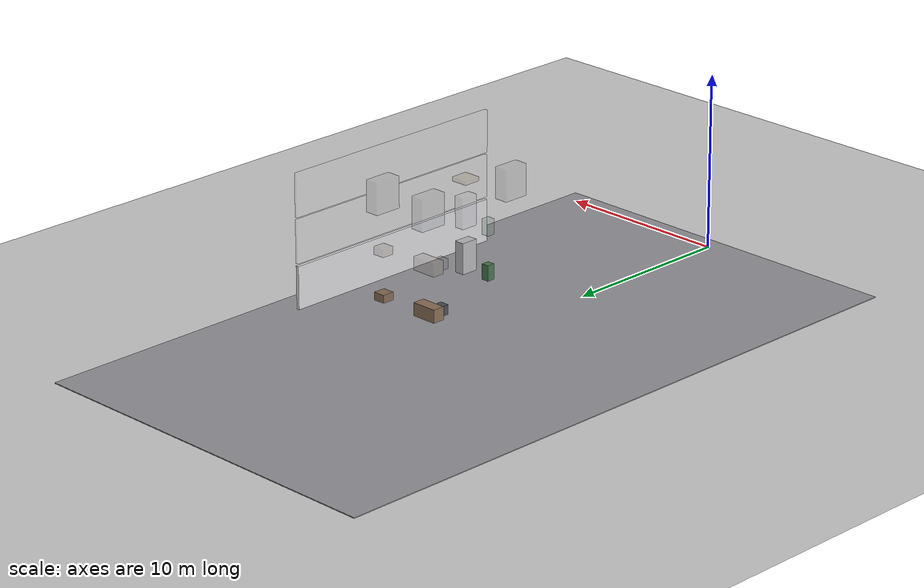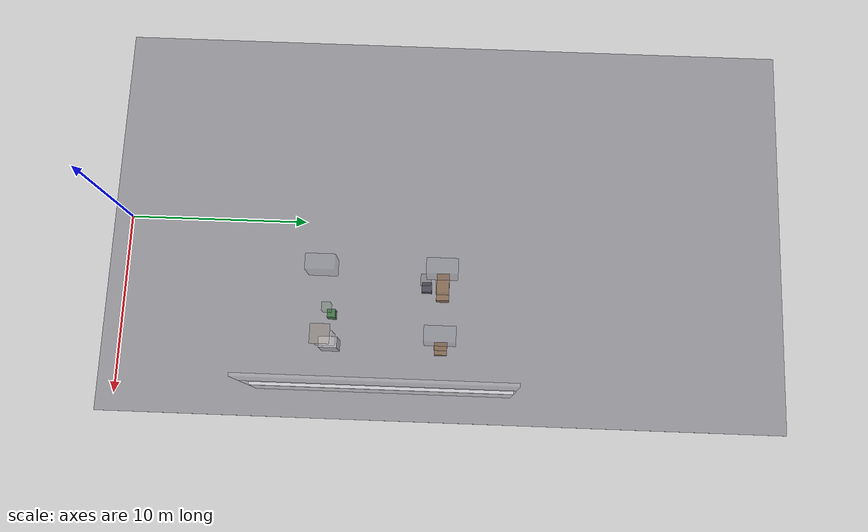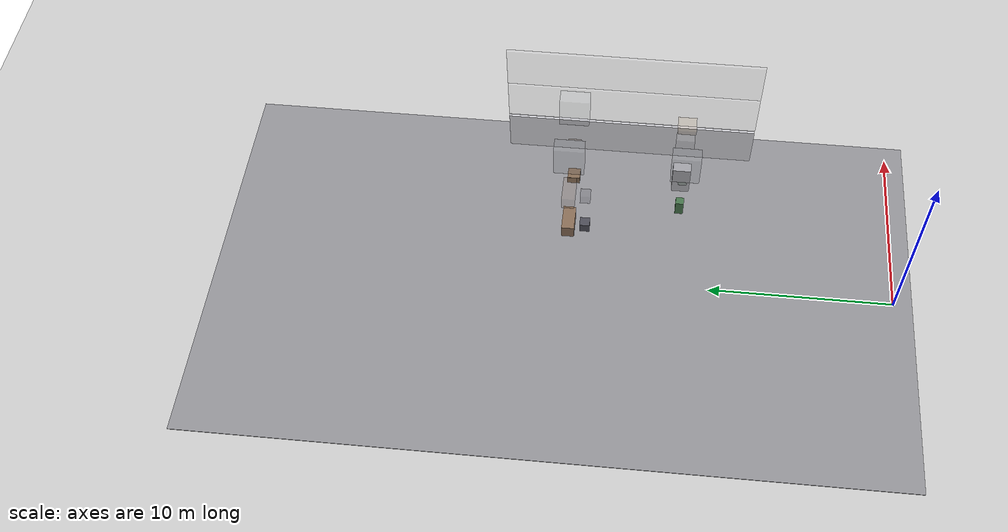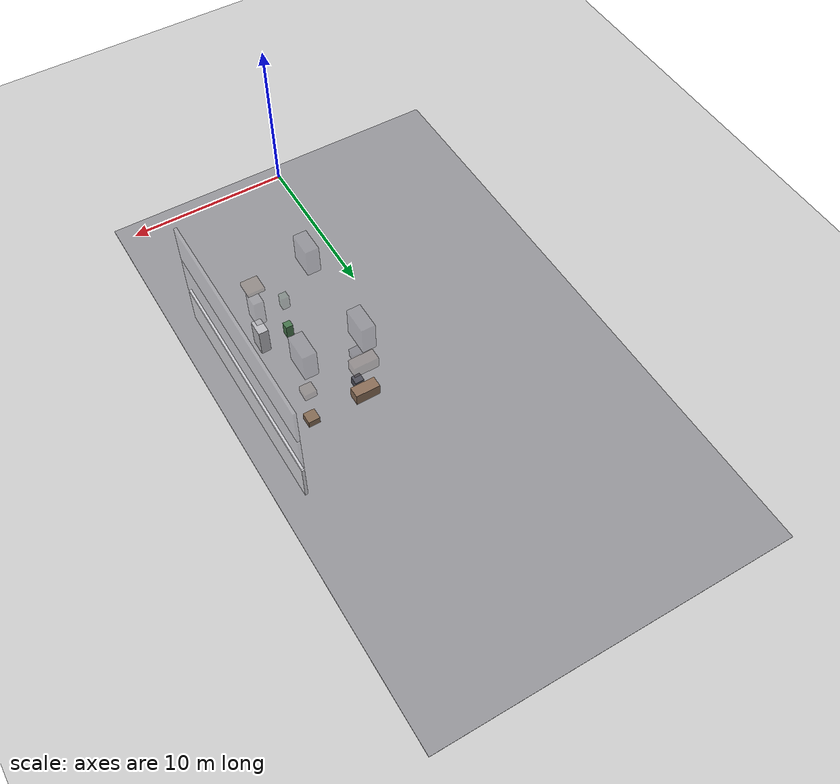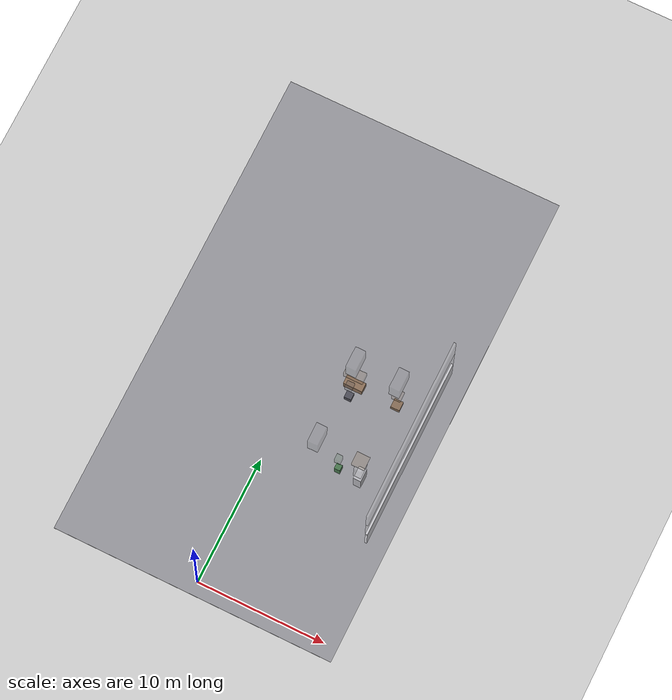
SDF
<sdf version="1.7">
 <world name="generated_world">
  <include><uri>model://sun</uri></include>
  <include><uri>model://ground_plane</uri></include>
  <model name="generated_building">
   <static>true</static>
   <link name="foundation">
    <pose>0.0000 18.0000 -0.1500 0.0000 0.0000 0.0000</pose>
    <collision name="foundation_collision">
     <geometry><box><size>22.0000 38.0000 0.3000</size></box></geometry>
    </collision>
    <visual name="foundation_visual">
     <geometry><box><size>22.0000 38.0000 0.3000</size></box></geometry>
     <material><ambient>0.58 0.58 0.60 1</ambient><diffuse>0.58 0.58 0.60 1</diffuse></material>
    </visual>
    <gravity>false</gravity>
   </link>
   <link name="floor_0_room_1_east_wall">
    <pose>9.4100 14.8650 1.2250 0.0000 0.0000 0.0000</pose>
    <collision name="floor_0_room_1_east_wall_collision">
     <geometry><box><size>0.1800 14.0300 2.4500</size></box></geometry>
    </collision>
    <visual name="floor_0_room_1_east_wall_visual">
     <geometry><box><size>0.1800 14.0300 2.4500</size></box></geometry>
     <material><ambient>0.86 0.86 0.88 1</ambient><diffuse>0.86 0.86 0.88 1</diffuse></material>
    </visual>
    <gravity>false</gravity>
   </link>
   <link name="floor_0_room_1_desk">
    <pose>3.6000 17.9225 0.4500 0.0000 0.0000 0.0000</pose>
    <collision name="floor_0_room_1_desk_collision">
     <geometry><box><size>1.5000 0.7000 0.7500</size></box></geometry>
    </collision>
    <visual name="floor_0_room_1_desk_visual">
     <geometry><box><size>1.5000 0.7000 0.7500</size></box></geometry>
     <material><ambient>0.54 0.43 0.34 1</ambient><diffuse>0.54 0.43 0.34 1</diffuse></material>
    </visual>
    <gravity>false</gravity>
   </link>
   <link name="floor_0_room_1_chair">
    <pose>3.6000 17.0225 0.2800 0.0000 0.0000 0.0000</pose>
    <collision name="floor_0_room_1_chair_collision">
     <geometry><box><size>0.5500 0.5500 0.5500</size></box></geometry>
    </collision>
    <visual name="floor_0_room_1_chair_visual">
     <geometry><box><size>0.5500 0.5500 0.5500</size></box></geometry>
     <material><ambient>0.30 0.30 0.34 1</ambient><diffuse>0.30 0.30 0.34 1</diffuse></material>
    </visual>
    <gravity>false</gravity>
   </link>
   <link name="floor_0_room_1_cabinet">
    <pose>7.0000 11.8075 0.9000 0.0000 0.0000 0.0000</pose>
    <collision name="floor_0_room_1_cabinet_collision">
     <geometry><box><size>0.6000 1.0000 1.8000</size></box></geometry>
    </collision>
    <visual name="floor_0_room_1_cabinet_visual">
     <geometry><box><size>0.6000 1.0000 1.8000</size></box></geometry>
     <material><ambient>0.72 0.72 0.74 1</ambient><diffuse>0.72 0.72 0.74 1</diffuse></material>
    </visual>
    <gravity>false</gravity>
   </link>
   <link name="floor_0_room_1_side_table">
    <pose>7.0000 17.9225 0.3200 0.0000 0.0000 0.0000</pose>
    <collision name="floor_0_room_1_side_table_collision">
     <geometry><box><size>0.7000 0.7000 0.4500</size></box></geometry>
    </collision>
    <visual name="floor_0_room_1_side_table_visual">
     <geometry><box><size>0.7000 0.7000 0.4500</size></box></geometry>
     <material><ambient>0.52 0.42 0.33 1</ambient><diffuse>0.52 0.42 0.33 1</diffuse></material>
    </visual>
    <gravity>false</gravity>
   </link>
   <link name="floor_0_room_1_planter">
    <pose>5.3000 11.8075 0.4500 0.0000 0.0000 0.0000</pose>
    <collision name="floor_0_room_1_planter_collision">
     <geometry><box><size>0.4500 0.4500 0.9000</size></box></geometry>
    </collision>
    <visual name="floor_0_room_1_planter_visual">
     <geometry><box><size>0.4500 0.4500 0.9000</size></box></geometry>
     <material><ambient>0.28 0.46 0.30 1</ambient><diffuse>0.28 0.46 0.30 1</diffuse></material>
    </visual>
    <gravity>false</gravity>
   </link>
   <link name="floor_1_room_1_east_wall">
    <pose>9.4100 14.8650 3.8250 0.0000 0.0000 0.0000</pose>
    <collision name="floor_1_room_1_east_wall_collision">
     <geometry><box><size>0.1800 14.0300 2.4500</size></box></geometry>
    </collision>
    <visual name="floor_1_room_1_east_wall_visual">
     <geometry><box><size>0.1800 14.0300 2.4500</size></box></geometry>
     <material><ambient>0.86 0.86 0.88 1</ambient><diffuse>0.86 0.86 0.88 1</diffuse></material>
     <transparency>0.80</transparency>
    </visual>
    <gravity>false</gravity>
   </link>
   <link name="floor_1_room_1_desk">
    <pose>3.6000 17.9225 3.0500 0.0000 0.0000 0.0000</pose>
    <collision name="floor_1_room_1_desk_collision">
     <geometry><box><size>1.5000 0.7000 0.7500</size></box></geometry>
    </collision>
    <visual name="floor_1_room_1_desk_visual">
     <geometry><box><size>1.5000 0.7000 0.7500</size></box></geometry>
     <material><ambient>0.54 0.43 0.34 1</ambient><diffuse>0.54 0.43 0.34 1</diffuse></material>
     <transparency>0.80</transparency>
    </visual>
    <gravity>false</gravity>
   </link>
   <link name="floor_1_room_1_chair">
    <pose>3.6000 17.0225 2.8800 0.0000 0.0000 0.0000</pose>
    <collision name="floor_1_room_1_chair_collision">
     <geometry><box><size>0.5500 0.5500 0.5500</size></box></geometry>
    </collision>
    <visual name="floor_1_room_1_chair_visual">
     <geometry><box><size>0.5500 0.5500 0.5500</size></box></geometry>
     <material><ambient>0.30 0.30 0.34 1</ambient><diffuse>0.30 0.30 0.34 1</diffuse></material>
     <transparency>0.80</transparency>
    </visual>
    <gravity>false</gravity>
   </link>
   <link name="floor_1_room_1_cabinet">
    <pose>7.0000 11.8075 3.5000 0.0000 0.0000 0.0000</pose>
    <collision name="floor_1_room_1_cabinet_collision">
     <geometry><box><size>0.6000 1.0000 1.8000</size></box></geometry>
    </collision>
    <visual name="floor_1_room_1_cabinet_visual">
     <geometry><box><size>0.6000 1.0000 1.8000</size></box></geometry>
     <material><ambient>0.72 0.72 0.74 1</ambient><diffuse>0.72 0.72 0.74 1</diffuse></material>
     <transparency>0.80</transparency>
    </visual>
    <gravity>false</gravity>
   </link>
   <link name="floor_1_room_1_side_table">
    <pose>7.0000 17.9225 2.9200 0.0000 0.0000 0.0000</pose>
    <collision name="floor_1_room_1_side_table_collision">
     <geometry><box><size>0.7000 0.7000 0.4500</size></box></geometry>
    </collision>
    <visual name="floor_1_room_1_side_table_visual">
     <geometry><box><size>0.7000 0.7000 0.4500</size></box></geometry>
     <material><ambient>0.52 0.42 0.33 1</ambient><diffuse>0.52 0.42 0.33 1</diffuse></material>
     <transparency>0.80</transparency>
    </visual>
    <gravity>false</gravity>
   </link>
   <link name="floor_1_room_1_planter">
    <pose>5.3000 11.8075 3.0500 0.0000 0.0000 0.0000</pose>
    <collision name="floor_1_room_1_planter_collision">
     <geometry><box><size>0.4500 0.4500 0.9000</size></box></geometry>
    </collision>
    <visual name="floor_1_room_1_planter_visual">
     <geometry><box><size>0.4500 0.4500 0.9000</size></box></geometry>
     <material><ambient>0.28 0.46 0.30 1</ambient><diffuse>0.28 0.46 0.30 1</diffuse></material>
     <transparency>0.80</transparency>
    </visual>
    <gravity>false</gravity>
   </link>
   <link name="floor_2_room_1_east_wall">
    <pose>9.4100 14.8650 6.4250 0.0000 0.0000 0.0000</pose>
    <collision name="floor_2_room_1_east_wall_collision">
     <geometry><box><size>0.1800 14.0300 2.4500</size></box></geometry>
    </collision>
    <visual name="floor_2_room_1_east_wall_visual">
     <geometry><box><size>0.1800 14.0300 2.4500</size></box></geometry>
     <material><ambient>0.86 0.86 0.88 1</ambient><diffuse>0.86 0.86 0.88 1</diffuse></material>
     <transparency>0.80</transparency>
    </visual>
    <gravity>false</gravity>
   </link>
   <link name="floor_2_room_1_rack_a">
    <pose>3.6000 17.9225 6.1000 0.0000 0.0000 0.0000</pose>
    <collision name="floor_2_room_1_rack_a_collision">
     <geometry><box><size>0.8000 1.6000 1.8000</size></box></geometry>
    </collision>
    <visual name="floor_2_room_1_rack_a_visual">
     <geometry><box><size>0.8000 1.6000 1.8000</size></box></geometry>
     <material><ambient>0.56 0.57 0.60 1</ambient><diffuse>0.56 0.57 0.60 1</diffuse></material>
     <transparency>0.80</transparency>
    </visual>
    <gravity>false</gravity>
   </link>
   <link name="floor_2_room_1_rack_b">
    <pose>7.0000 17.9225 6.1000 0.0000 0.0000 0.0000</pose>
    <collision name="floor_2_room_1_rack_b_collision">
     <geometry><box><size>0.8000 1.6000 1.8000</size></box></geometry>
    </collision>
    <visual name="floor_2_room_1_rack_b_visual">
     <geometry><box><size>0.8000 1.6000 1.8000</size></box></geometry>
     <material><ambient>0.56 0.57 0.60 1</ambient><diffuse>0.56 0.57 0.60 1</diffuse></material>
     <transparency>0.80</transparency>
    </visual>
    <gravity>false</gravity>
   </link>
   <link name="floor_2_room_1_rack_c">
    <pose>3.6000 11.8075 6.1000 0.0000 0.0000 0.0000</pose>
    <collision name="floor_2_room_1_rack_c_collision">
     <geometry><box><size>0.8000 1.5000 1.8000</size></box></geometry>
    </collision>
    <visual name="floor_2_room_1_rack_c_visual">
     <geometry><box><size>0.8000 1.5000 1.8000</size></box></geometry>
     <material><ambient>0.56 0.57 0.60 1</ambient><diffuse>0.56 0.57 0.60 1</diffuse></material>
     <transparency>0.80</transparency>
    </visual>
    <gravity>false</gravity>
   </link>
   <link name="floor_2_room_1_pallet">
    <pose>7.0000 11.8075 5.3200 0.0000 0.0000 0.0000</pose>
    <collision name="floor_2_room_1_pallet_collision">
     <geometry><box><size>1.0000 1.0000 0.2400</size></box></geometry>
    </collision>
    <visual name="floor_2_room_1_pallet_visual">
     <geometry><box><size>1.0000 1.0000 0.2400</size></box></geometry>
     <material><ambient>0.56 0.44 0.28 1</ambient><diffuse>0.56 0.44 0.28 1</diffuse></material>
     <transparency>0.80</transparency>
    </visual>
    <gravity>false</gravity>
   </link>
  </model>
 </world>
</sdf>
